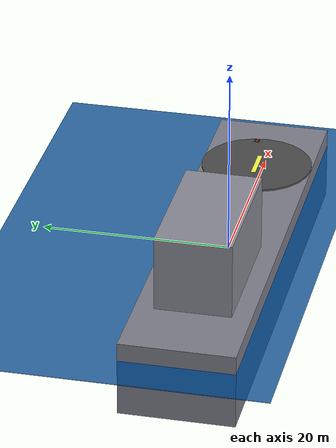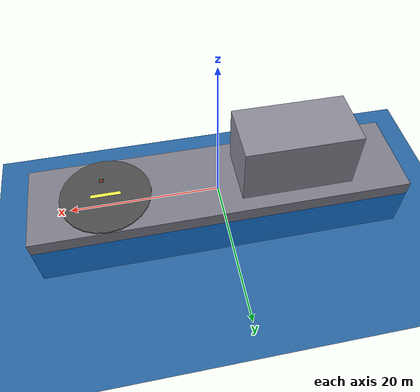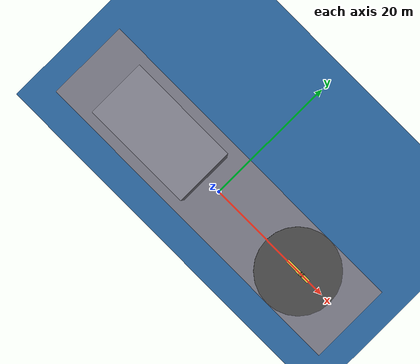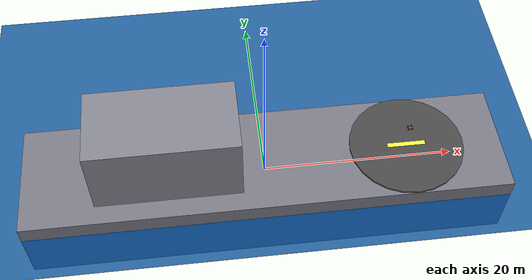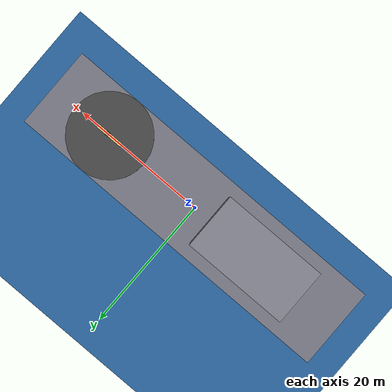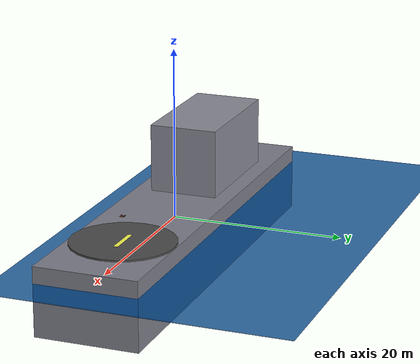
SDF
<?xml version="1.0" ?>
<sdf version="1.6">
  <world name="ship_recording_world">

    <!-- Required system plugins for Gazebo Ionic -->
    <plugin filename="gz-sim-physics-system" name="gz::sim::systems::Physics"></plugin>
    <plugin filename="gz-sim-scene-broadcaster-system" name="gz::sim::systems::SceneBroadcaster"></plugin>
    <plugin filename="gz-sim-user-commands-system" name="gz::sim::systems::UserCommands"></plugin>
    <plugin filename="gz-sim-sensors-system" name="gz::sim::systems::Sensors">
      <render_engine>ogre</render_engine>
    </plugin>

    <!-- Buoyancy system: water below z=0, air above z=0 -->
    <plugin filename="gz-sim-buoyancy-system" name="gz::sim::systems::Buoyancy">
      <graded_buoyancy>
        <default_density>1025</default_density>
        <density_change>
          <above_depth>0</above_depth>
          <density>1</density>
        </density_change>
      </graded_buoyancy>
      <enable>ship</enable>
    </plugin>

    <!-- Physics settings -->
    <physics name="default_physics" type="dart">
      <max_step_size>0.001</max_step_size>
      <real_time_factor>1</real_time_factor>
      <real_time_update_rate>1000</real_time_update_rate>
    </physics>

    <!-- Scene settings -->
    <scene>
      <ambient>0.6 0.6 0.7 1</ambient>
      <background>0.4 0.5 0.6 1</background>
      <shadows>true</shadows>
    </scene>

    <light type="directional" name="sun">
      <cast_shadows>true</cast_shadows>
      <pose>0 0 100 0 0 0</pose>
      <diffuse>0.8 0.8 0.8 1</diffuse>
      <specular>0.3 0.3 0.3 1</specular>
      <direction>-0.5 0.3 -1</direction>
    </light>

    <!-- Simple water plane visual -->
    <model name="water_plane">
      <static>true</static>
      <pose>0 0 0 0 0 0</pose>
      <link name="link">
        <visual name="water_visual">
          <geometry>
            <box>
              <size>500 500 0.1</size>
            </box>
          </geometry>
          <material>
            <ambient>0.0 0.2 0.4 0.8</ambient>
            <diffuse>0.0 0.3 0.6 0.8</diffuse>
            <specular>0.3 0.3 0.3 1</specular>
          </material>
        </visual>
      </link>
    </model>

    <!-- Ship model with buoyancy -->
    <model name="ship">
      <pose>0 0 0 0 0 0</pose>
      <link name="hull">
        <inertial>
          <mass>4000000</mass>
          <inertia>
            <ixx>8e9</ixx>
            <iyy>4e10</iyy>
            <izz>4e10</izz>
          </inertia>
        </inertial>

        <collision name="hull_collision">
          <pose>0 0 -2 0 0 0</pose>
          <geometry>
            <box>
              <size>50 12 8</size>
            </box>
          </geometry>
        </collision>

        <visual name="hull_visual">
          <pose>0 0 -2 0 0 0</pose>
          <geometry>
            <box>
              <size>50 12 8</size>
            </box>
          </geometry>
          <material>
            <ambient>0.3 0.3 0.35 1</ambient>
            <diffuse>0.5 0.5 0.55 1</diffuse>
            <specular>0.1 0.1 0.1 1</specular>
          </material>
        </visual>

        <visual name="superstructure">
          <pose>-10 0 6 0 0 0</pose>
          <geometry>
            <box>
              <size>15 8 8</size>
            </box>
          </geometry>
          <material>
            <ambient>0.35 0.35 0.4 1</ambient>
            <diffuse>0.55 0.55 0.6 1</diffuse>
          </material>
        </visual>

        <visual name="helipad">
          <pose>15 0 2.1 0 0 0</pose>
          <geometry>
            <cylinder>
              <radius>6</radius>
              <length>0.2</length>
            </cylinder>
          </geometry>
          <material>
            <ambient>0.2 0.2 0.2 1</ambient>
            <diffuse>0.3 0.3 0.3 1</diffuse>
          </material>
        </visual>

        <visual name="helipad_marking">
          <pose>15 0 2.21 0 0 0</pose>
          <geometry>
            <box>
              <size>4 0.5 0.01</size>
            </box>
          </geometry>
          <material>
            <ambient>0.9 0.9 0.2 1</ambient>
            <diffuse>1.0 1.0 0.3 1</diffuse>
          </material>
        </visual>
      </link>

      <plugin
        filename="gz-sim-hydrodynamics-system"
        name="gz::sim::systems::Hydrodynamics">
        <link_name>hull</link_name>
        <xDotU>-2.0e4</xDotU>
        <yDotV>-2.0e4</yDotV>
        <zDotW>-5.0e6</zDotW>
        <kDotP>-5.0e6</kDotP>
        <mDotQ>-5.0e7</mDotQ>
        <nDotR>-5.0e7</nDotR>
        <xUabsU>-1.0e4</xUabsU>
        <yVabsV>-1.0e4</yVabsV>
        <zWabsW>-5.0e5</zWabsW>
      </plugin>
    </model>

    <!-- Apply forces to models -->
    <plugin filename="gz-sim-apply-link-wrench-system"
            name="gz::sim::systems::ApplyLinkWrench">
    </plugin>

    <!-- Quadcopter above helipad -->
    <model name="quadcopter">
      <pose>15 0 5 0 0 0</pose>
      <link name="base_link">
        <inertial>
          <mass>2.0</mass>
          <inertia>
            <ixx>0.02</ixx>
            <iyy>0.02</iyy>
            <izz>0.04</izz>
          </inertia>
        </inertial>

        <collision name="body_collision">
          <geometry>
            <box><size>0.4 0.4 0.15</size></box>
          </geometry>
        </collision>

        <visual name="body_visual">
          <geometry>
            <box><size>0.25 0.25 0.1</size></box>
          </geometry>
          <material>
            <ambient>0.8 0.2 0.1 1</ambient>
            <diffuse>0.9 0.3 0.1 1</diffuse>
          </material>
        </visual>

        <visual name="arm_fr">
          <pose>0.15 -0.15 0 0 0 0.785</pose>
          <geometry><box><size>0.25 0.03 0.02</size></box></geometry>
          <material><diffuse>0.2 0.2 0.2 1</diffuse></material>
        </visual>
        <visual name="arm_fl">
          <pose>0.15 0.15 0 0 0 -0.785</pose>
          <geometry><box><size>0.25 0.03 0.02</size></box></geometry>
          <material><diffuse>0.2 0.2 0.2 1</diffuse></material>
        </visual>
        <visual name="arm_br">
          <pose>-0.15 -0.15 0 0 0 -0.785</pose>
          <geometry><box><size>0.25 0.03 0.02</size></box></geometry>
          <material><diffuse>0.2 0.2 0.2 1</diffuse></material>
        </visual>
        <visual name="arm_bl">
          <pose>-0.15 0.15 0 0 0 0.785</pose>
          <geometry><box><size>0.25 0.03 0.02</size></box></geometry>
          <material><diffuse>0.2 0.2 0.2 1</diffuse></material>
        </visual>

        <visual name="motor_fr">
          <pose>0.2 -0.2 0.02 0 0 0</pose>
          <geometry><cylinder><radius>0.03</radius><length>0.04</length></cylinder></geometry>
          <material><diffuse>0.9 0.2 0.2 1</diffuse></material>
        </visual>
        <visual name="motor_fl">
          <pose>0.2 0.2 0.02 0 0 0</pose>
          <geometry><cylinder><radius>0.03</radius><length>0.04</length></cylinder></geometry>
          <material><diffuse>0.2 0.9 0.2 1</diffuse></material>
        </visual>
        <visual name="motor_br">
          <pose>-0.2 -0.2 0.02 0 0 0</pose>
          <geometry><cylinder><radius>0.03</radius><length>0.04</length></cylinder></geometry>
          <material><diffuse>0.2 0.2 0.9 1</diffuse></material>
        </visual>
        <visual name="motor_bl">
          <pose>-0.2 0.2 0.02 0 0 0</pose>
          <geometry><cylinder><radius>0.03</radius><length>0.04</length></cylinder></geometry>
          <material><diffuse>0.9 0.9 0.2 1</diffuse></material>
        </visual>

        <visual name="prop_fr">
          <pose>0.2 -0.2 0.05 0 0 0</pose>
          <geometry><cylinder><radius>0.12</radius><length>0.005</length></cylinder></geometry>
          <material><diffuse>0.3 0.3 0.3 0.5</diffuse></material>
        </visual>
        <visual name="prop_fl">
          <pose>0.2 0.2 0.05 0 0 0</pose>
          <geometry><cylinder><radius>0.12</radius><length>0.005</length></cylinder></geometry>
          <material><diffuse>0.3 0.3 0.3 0.5</diffuse></material>
        </visual>
        <visual name="prop_br">
          <pose>-0.2 -0.2 0.05 0 0 0</pose>
          <geometry><cylinder><radius>0.12</radius><length>0.005</length></cylinder></geometry>
          <material><diffuse>0.3 0.3 0.3 0.5</diffuse></material>
        </visual>
        <visual name="prop_bl">
          <pose>-0.2 0.2 0.05 0 0 0</pose>
          <geometry><cylinder><radius>0.12</radius><length>0.005</length></cylinder></geometry>
          <material><diffuse>0.3 0.3 0.3 0.5</diffuse></material>
        </visual>

        <visual name="gear_fl">
          <pose>0.12 0.12 -0.08 0 0 0</pose>
          <geometry><cylinder><radius>0.01</radius><length>0.12</length></cylinder></geometry>
          <material><diffuse>0.2 0.2 0.2 1</diffuse></material>
        </visual>
        <visual name="gear_fr">
          <pose>0.12 -0.12 -0.08 0 0 0</pose>
          <geometry><cylinder><radius>0.01</radius><length>0.12</length></cylinder></geometry>
          <material><diffuse>0.2 0.2 0.2 1</diffuse></material>
        </visual>
        <visual name="gear_bl">
          <pose>-0.12 0.12 -0.08 0 0 0</pose>
          <geometry><cylinder><radius>0.01</radius><length>0.12</length></cylinder></geometry>
          <material><diffuse>0.2 0.2 0.2 1</diffuse></material>
        </visual>
        <visual name="gear_br">
          <pose>-0.12 -0.12 -0.08 0 0 0</pose>
          <geometry><cylinder><radius>0.01</radius><length>0.12</length></cylinder></geometry>
          <material><diffuse>0.2 0.2 0.2 1</diffuse></material>
        </visual>
      </link>
    </model>

    <!-- Recording camera - positioned to view ship and helipad -->
    <model name="recording_camera">
      <static>true</static>
      <pose>-30 -20 20 0 0.4 0.5</pose>
      <link name="camera_link">
        <sensor name="camera" type="camera">
          <always_on>1</always_on>
          <update_rate>30</update_rate>
          <visualize>false</visualize>
          <camera>
            <horizontal_fov>1.2</horizontal_fov>
            <image>
              <width>1280</width>
              <height>720</height>
              <format>R8G8B8</format>
            </image>
            <clip>
              <near>0.1</near>
              <far>500</far>
            </clip>
          </camera>
          <plugin filename="gz-sim-camera-video-recorder-system"
                  name="gz::sim::systems::CameraVideoRecorder">
            <service>/camera/record_video</service>
            <use_sim_time>true</use_sim_time>
            <fps>30</fps>
            <bitrate>8000000</bitrate>
          </plugin>
        </sensor>
      </link>
    </model>

  </world>
</sdf>
